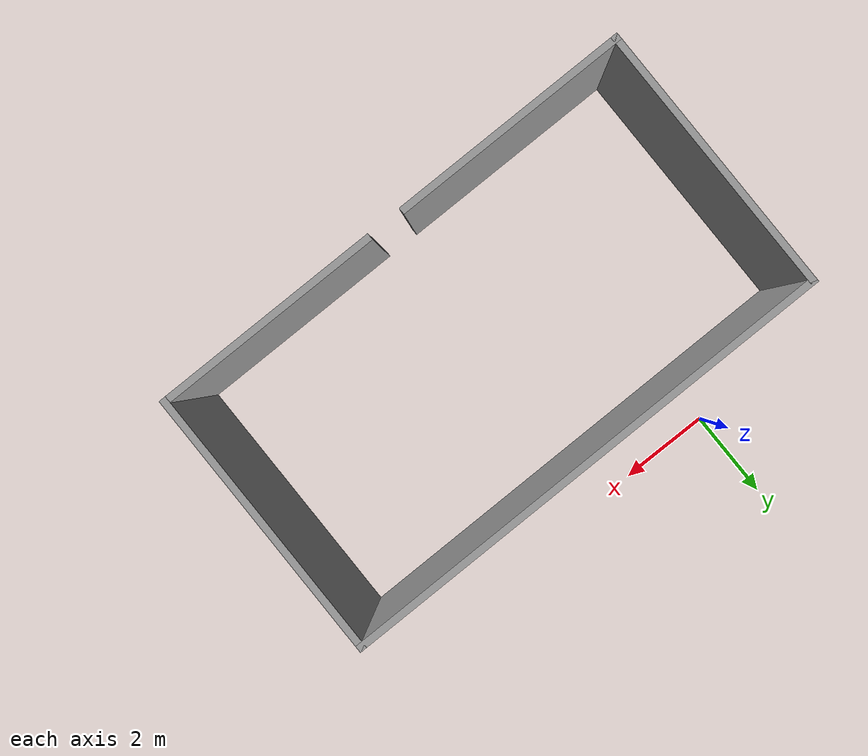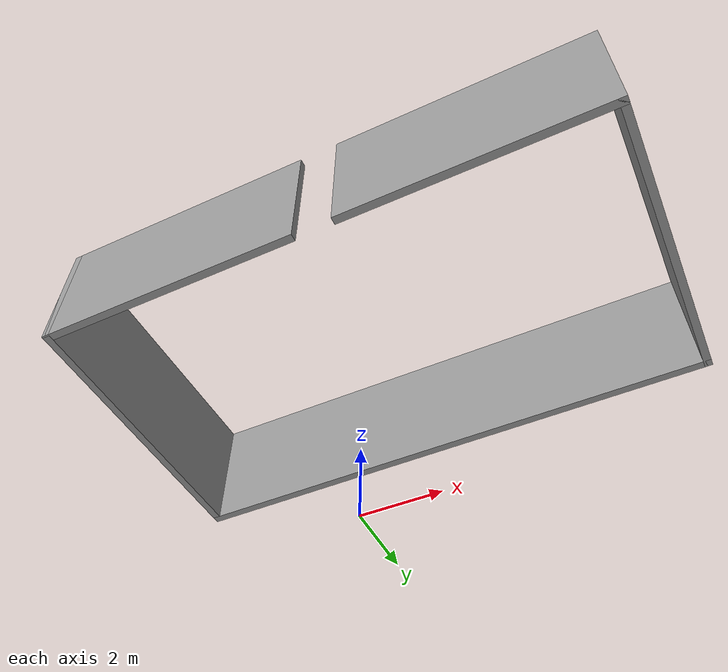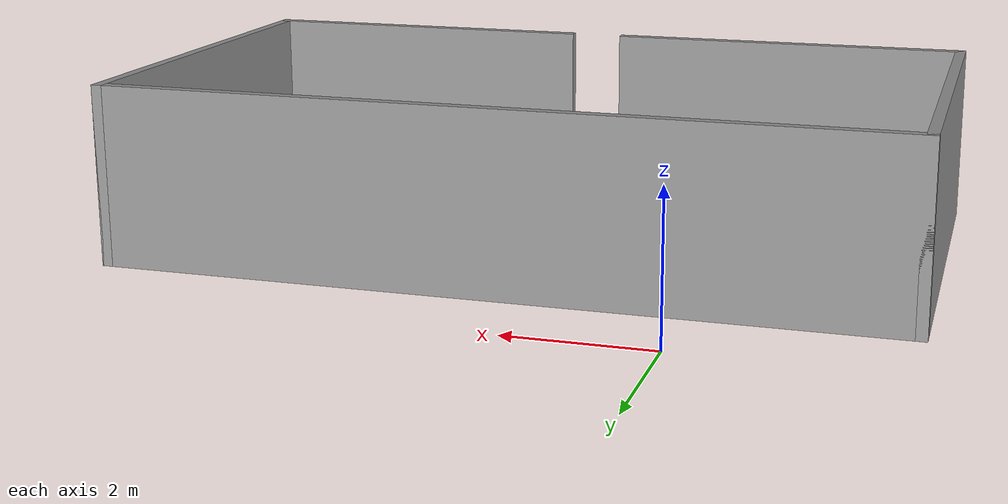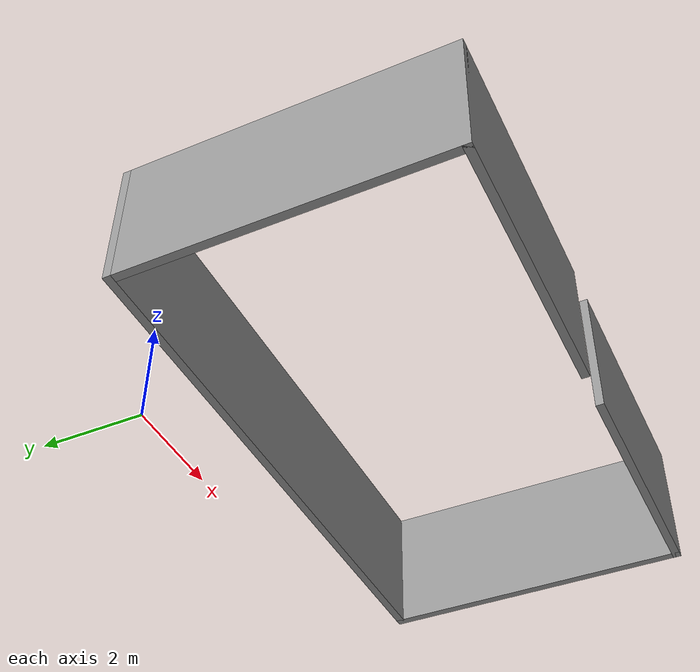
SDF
<?xml version='1.0'?>
<sdf version='1.7'>
  <model name='restaurant_walls'>
    <pose>2.545 -3.5975 0 0 -0 0</pose>
    <link name='Wall_0'>
      <collision name='Wall_0_Collision'>
        <geometry>
          <box>
            <size>11 0.15 2.5</size>
          </box>
        </geometry>
        <pose>0 0 1.25 0 -0 0</pose>
      </collision>
      <visual name='Wall_0_Visual'>
        <pose>0 0 1.25 0 -0 0</pose>
        <geometry>
          <box>
            <size>11 0.15 2.5</size>
          </box>
        </geometry>
        <material>
          <script>
            <uri>file://media/materials/scripts/gazebo.material</uri>
            <name>Gazebo/Grey</name>
          </script>
          <ambient>1 1 1 1</ambient>
        </material>
        <meta>
          <layer>0</layer>
        </meta>
      </visual>
      <pose>0 2.3275 0 0 -0 0</pose>
    </link>
    <link name='Wall_3'>
      <collision name='Wall_3_Collision'>
        <geometry>
          <box>
            <size>6 0.15 2.5</size>
          </box>
        </geometry>
        <pose>0 0 1.25 0 -0 0</pose>
      </collision>
      <visual name='Wall_3_Visual'>
        <pose>0 0 1.25 0 -0 0</pose>
        <geometry>
          <box>
            <size>6 0.15 2.5</size>
          </box>
        </geometry>
        <material>
          <script>
            <uri>file://media/materials/scripts/gazebo.material</uri>
            <name>Gazebo/Grey</name>
          </script>
          <ambient>1 1 1 1</ambient>
        </material>
        <meta>
          <layer>0</layer>
        </meta>
      </visual>
      <pose>-5.425 -0.5975 0 0 -0 -1.5708</pose>
    </link>
    <link name='Wall_4'>
      <collision name='Wall_4_Collision'>
        <geometry>
          <box>
            <size>5.25 0.15 2.5</size>
          </box>
        </geometry>
        <pose>0 0 1.25 0 -0 0</pose>
      </collision>
      <visual name='Wall_4_Visual'>
        <pose>0 0 1.25 0 -0 0</pose>
        <geometry>
          <box>
            <size>5.25 0.15 2.5</size>
          </box>
        </geometry>
        <material>
          <script>
            <uri>file://media/materials/scripts/gazebo.material</uri>
            <name>Gazebo/Grey</name>
          </script>
          <ambient>1 1 1 1</ambient>
        </material>
        <meta>
          <layer>0</layer>
        </meta>
      </visual>
      <pose>-2.875 -3.5225 0 0 -0 0</pose>
    </link>
    <link name='Wall_6'>
      <collision name='Wall_6_Collision'>
        <geometry>
          <box>
            <size>6 0.15 2.5</size>
          </box>
        </geometry>
        <pose>0 0 1.25 0 -0 0</pose>
      </collision>
      <visual name='Wall_6_Visual'>
        <pose>0 0 1.25 0 -0 0</pose>
        <geometry>
          <box>
            <size>6 0.15 2.5</size>
          </box>
        </geometry>
        <material>
          <script>
            <uri>file://media/materials/scripts/gazebo.material</uri>
            <name>Gazebo/Grey</name>
          </script>
          <ambient>1 1 1 1</ambient>
        </material>
        <meta>
          <layer>0</layer>
        </meta>
      </visual>
      <pose>5.425 -0.5975 0 0 -0 -1.5708</pose>
    </link>
    <link name='Wall_7'>
      <collision name='Wall_7_Collision'>
        <geometry>
          <box>
            <size>5 0.15 2.5</size>
          </box>
        </geometry>
        <pose>0 0 1.25 0 -0 0</pose>
      </collision>
      <visual name='Wall_7_Visual'>
        <pose>0 0 1.25 0 -0 0</pose>
        <geometry>
          <box>
            <size>5 0.15 2.5</size>
          </box>
        </geometry>
        <material>
          <script>
            <uri>file://media/materials/scripts/gazebo.material</uri>
            <name>Gazebo/Grey</name>
          </script>
          <ambient>1 1 1 1</ambient>
        </material>
        <meta>
          <layer>0</layer>
        </meta>
      </visual>
      <pose>3 -3.5225 0 0 -0 3.14159</pose>
    </link>
    <static>1</static>
  </model>
</sdf>
